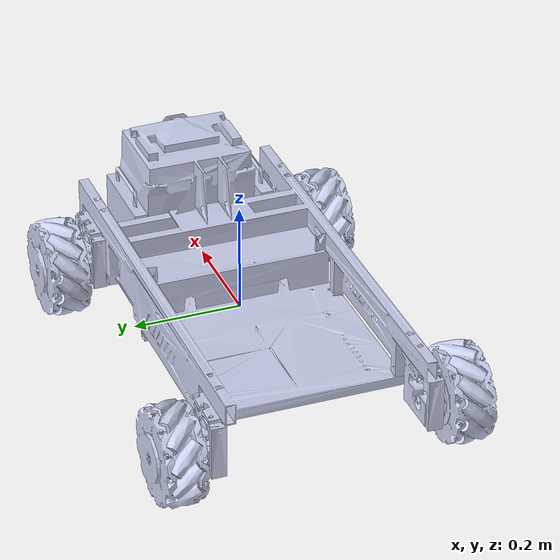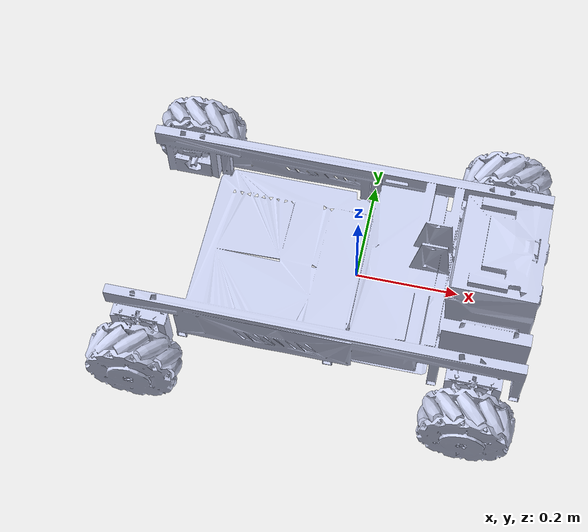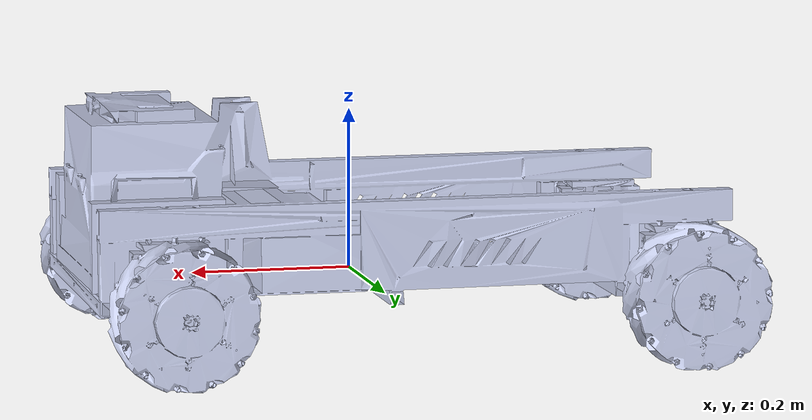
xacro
<?xml version="1.0"?>
<robot xmlns:xacro="http://www.ros.org/wiki/xacro"  name="robot">

    <xacro:include filename="mecabot.urdf.xacro" />
    <xacro:include filename="ros2_control.xacro" />

</robot>

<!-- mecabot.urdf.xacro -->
<robot xmlns:xacro="http://www.ros.org/wiki/xacro">

    <material name="white">
        <color rgba="1 1 1 1" />
    </material>

    <material name="orange">
        <color rgba="1 0.3 0.1 1"/>
    </material>

    <material name="blue">
        <color rgba="0.2 0.2 1 1"/>
    </material>

    <material name="black">
        <color rgba="0 0 0 1"/>
    </material>

    <material name="red">
        <color rgba="1 0 0 1"/>
    </material>

    <!-- BASE LINK -->

    <link name="base_link">

    </link>

    <!-- BASE_FOOTPRINT LINK -->

    <!-- CHASSIS LINK -->

    <joint name="chassis_joint" type="fixed">
        <parent link="base_link"/>
        <child link="chassis"/>
        <origin xyz="0 0 0" rpy="0 0 0"/>
    </joint>

<link
    name="chassis">
    <inertial>
      <origin
        xyz="0.18547 0.0028349 0.071598"
        rpy="0 0 0" />
      <mass
        value="10.378" />
      <inertia
        ixx="0.15"
        ixy="0.0023"
        ixz="0.0284"
        iyy="0.3813"
        iyz="0.0012"
        izz="0.4504" />
    </inertial>
    <visual>
      <origin
        xyz="0 0 0"
        rpy="0 0 0" />
      <geometry>
        <mesh
          filename="file://$(find mecapkg)/meshes/chassis.STL" />
      </geometry>
      <material
        name="">
        <color
          rgba="0.79216 0.81961 0.93333 1" />
      </material>
    </visual>
    <collision>
      <origin
        xyz="0 0 0"
        rpy="0 0 0" />
      <geometry>
        <mesh
          filename="file://$(find mecapkg)/meshes/chassis.STL" />
      </geometry>
    </collision>
  </link>
  <link
    name="fl">
    <inertial>
      <origin
        xyz="0 0.076094 0"
        rpy="0 0 0" />
      <mass
        value="6" />
      <inertia
        ixx="0.0165"
        ixy="0"
        ixz="0"
        iyy="0.026"
        iyz="0"
        izz="0.0165" />
    </inertial>
    <visual>
      <origin
        xyz="0 0 0"
        rpy="0 0 0" />
      <geometry>
        <mesh
          filename="file://$(find mecapkg)/meshes/fl.STL" />
      </geometry>
      <material
        name="">
        <color
          rgba="0.79216 0.81961 0.93333 1" />
      </material>
    </visual>
    <collision>
      <origin
        xyz="0 0 0"
        rpy="0 0 0" />
      <geometry>
        <mesh
          filename="file://$(find mecapkg)/meshes/fl.STL" />
      </geometry>
    </collision>
  </link>
  <joint
    name="flj"
    type="continuous">
    <origin
      xyz="0.25813 0.18198 -0.0085"
      rpy="0 0 0" />
    <parent
      link="chassis" />
    <child
      link="fl" />
    <axis
      xyz="0 1 0" />
  </joint>
  <link
    name="br">
    <inertial>
      <origin
        xyz="0 -0.076094 0"
        rpy="0 0 0" />
      <mass
        value="6" />
      <inertia
        ixx="0.0165"
        ixy="0"
        ixz="0"
        iyy="0.026"
        iyz="0"
        izz="0.0165" />
    </inertial>
    <visual>
      <origin
        xyz="0 0 0"
        rpy="0 0 0" />
      <geometry>
        <mesh
          filename="file://$(find mecapkg)/meshes/br.STL" />
      </geometry>
      <material
        name="">
        <color
          rgba="0.79216 0.81961 0.93333 1" />
      </material>
    </visual>
    <collision>
      <origin
        xyz="0 0 0"
        rpy="0 0 0" />
      <geometry>
        <mesh
          filename="file://$(find mecapkg)/meshes/br.STL" />
      </geometry>
    </collision>
  </link>
  <joint
    name="brj"
    type="continuous">
    <origin
      xyz="-0.377 -0.18199 -0.0085"
      rpy="0 0 0" />
    <parent
      link="chassis" />
    <child
      link="br" />
    <axis
      xyz="0 1 0" />
  </joint>
  <link
    name="fr">
    <inertial>
      <origin
        xyz="0 -0.077001 0"
        rpy="0 0 0" />
      <mass
        value="6" />
      <inertia
        ixx="0.0156"
        ixy="0"
        ixz="0"
        iyy="0.0244"
        iyz="0"
        izz="0.0156" />
    </inertial>
    <visual>
      <origin
        xyz="0 0 0"
        rpy="0 0 0" />
      <geometry>
        <mesh
          filename="file://$(find mecapkg)/meshes/fr.STL" />
      </geometry>
      <material
        name="">
        <color
          rgba="0.79216 0.81961 0.93333 1" />
      </material>
    </visual>
    <collision>
      <origin
        xyz="0 0 0"
        rpy="0 0 0" />
      <geometry>
        <mesh
          filename="file://$(find mecapkg)/meshes/fr.STL" />
      </geometry>
    </collision>
  </link>
  <joint
    name="frj"
    type="continuous">
    <origin
      xyz="0.25813 -0.18199 -0.0085"
      rpy="0 0 0" />
    <parent
      link="chassis" />
    <child
      link="fr" />
    <axis
      xyz="0 1 0" />
  </joint>
  <link
    name="bl">
    <inertial>
      <origin
        xyz="0 0.077001 0"
        rpy="0 0 0" />
      <mass
        value="6" />
      <inertia
        ixx="0.0156"
        ixy="0"
        ixz="0"
        iyy="0.0244"
        iyz="0"
        izz="0.0156" />
    </inertial>
    <visual>
      <origin
        xyz="0 0 0"
        rpy="0 0 0" />
      <geometry>
        <mesh
          filename="file://$(find mecapkg)/meshes/bl.STL" />
      </geometry>
      <material
        name="">
        <color
          rgba="0.79216 0.81961 0.93333 1" />
      </material>
    </visual>
    <collision>
      <origin
        xyz="0 0 0"
        rpy="0 0 0" />
      <geometry>
        <mesh
          filename="file://$(find mecapkg)/meshes/bl.STL" />
      </geometry>
    </collision>
  </link>
  <joint
    name="blj"
    type="continuous">
    <origin
      xyz="-0.377 0.18198 -0.0085"
      rpy="0 0 0" />
    <parent
      link="chassis" />
    <child
      link="bl" />
    <axis
      xyz="0 1 0" />
  </joint>
</robot>
